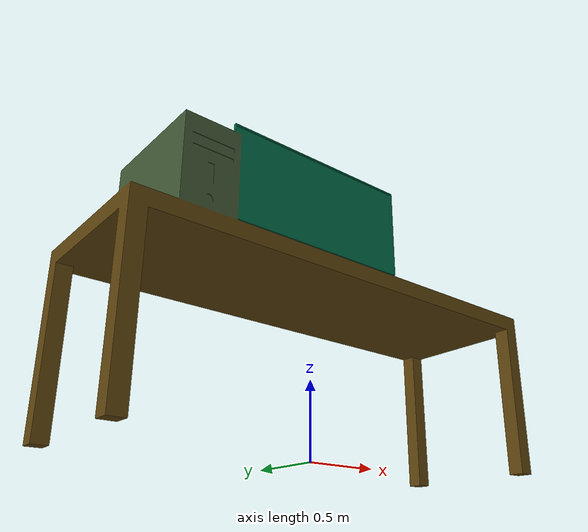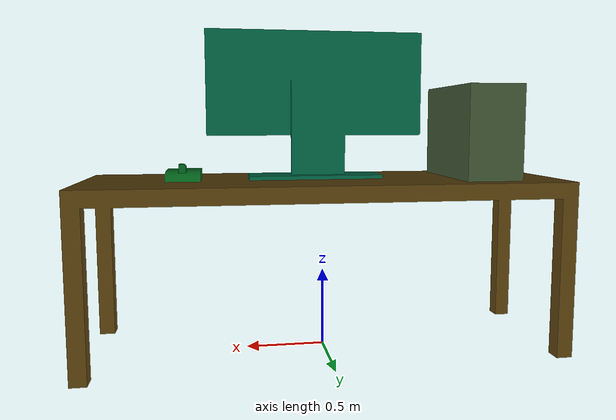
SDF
<?xml version='1.0' ?>
<sdf version="1.6">
    <model name="computer_table">
        <static>true</static>
        <link name="link">
            <collision name="collision">
                <pose>0 0 0 0 0 0</pose>
                <geometry>
                    <mesh>
                        <uri>computer_table.dae</uri>
                    </mesh>
                </geometry>
            </collision>
            <visual name="visual">
                <pose>0 0 0 0 0 0</pose>
                <geometry>
                    <mesh>
                        <uri>computer_table.dae</uri>
                    </mesh>
                </geometry>
            </visual>
        </link>
    </model>
</sdf>
